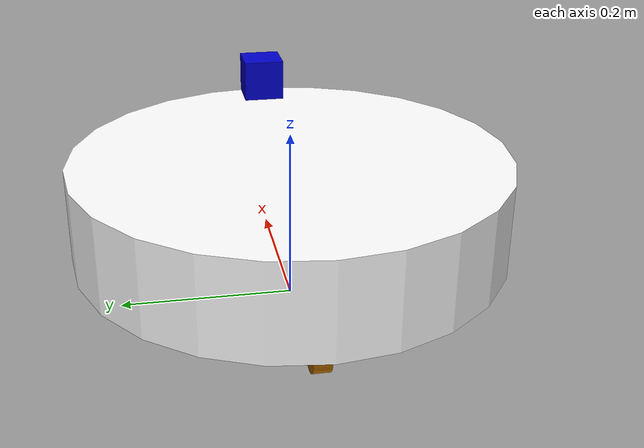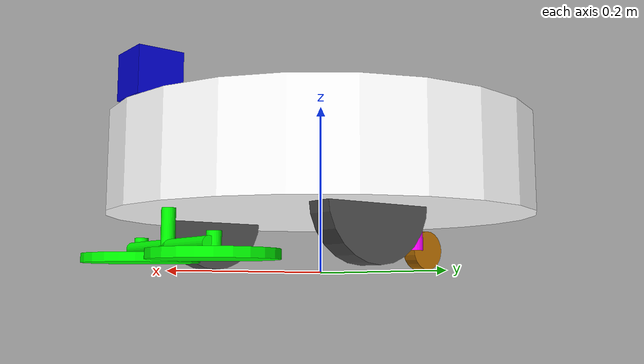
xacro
<?xml version="1.0"?>
<robot name="cleaning_robot" xmlns:xacro="http://www.ros.org/wiki/xacro">

    <!--Inclusions-->
    <!--Colors-->
    <material name="Gray">
        <color rgba="0.6 1 0.8 1"/>
    </material>

    <material name="DarkGray">
        <color rgba="0.3 0.3 0.3 1"/>
    </material>

    <material name="Orange">
        <color rgba="1 0.6 0 1"/>
    </material>

    <material name="Purple">
        <color rgba="1 0 1 1"/>
    </material>

    <material name="DarkOrange">
        <color rgba="0.7 0.42 0 1"/>
    </material>

    <material name="Green">
        <color rgba="0 1 0 1"/>
    </material>

    <material name="Red">
        <color rgba="1 0 0 1"/>
    </material>

    <material name="Blue">
        <color rgba="0.0 0.0 0.8 1.0"/>
    </material>

    <material name="White">
        <color rgba="1.0 1.0 1.0 1.0"/>
    </material>

    <!--Constants-->
    <xacro:property name="M_PI" value="3.141592653589793238462643"/>
    <xacro:property name="M_PI_2" value="1.57079632679" />
    <xacro:property name="DEG_TO_RAD" value="0.01745" />

    <xacro:property name="base_x_to_wheel" value="0.06"/>
    <xacro:property name="base_y_to_wheel" value="0.156"/>
    <xacro:property name="base_z_to_wheel" value="0.05"/>
    <xacro:property name="wheel_separation" value="0.312"/>

    <!--Component dimensions-->
    <xacro:property name="base_h" value="0.11"/>
    <xacro:property name="base_r" value="0.25"/>
    <xacro:property name="base_m" value="10.0" />

    <xacro:property name="caster_h" value="0.02"/>
    <xacro:property name="caster_r" value="0.025"/>
    <xacro:property name="caster_m" value="0.15"/>

    <xacro:property name="caster_rot_h" value="0.06"/>
    <xacro:property name="caster_rot_r" value="0.015"/>
    <xacro:property name="caster_rot_m" value="0.15"/>

    <xacro:property name="br_lft_h" value="0.10"/>
    <xacro:property name="br_lft_r" value="0.0075"/>
    <xacro:property name="br_lft_m" value="0.15"/>

    <xacro:property name="br_con1_h" value="0.09"/>
    <xacro:property name="br_con1_r" value="0.0075"/>
    <xacro:property name="br_con1_m" value="0.15"/>

    <xacro:property name="br_con2_h" value="0.025"/>
    <xacro:property name="br_con2_r" value="0.0075"/>
    <xacro:property name="br_con2_m" value="0.15"/>

    <xacro:property name="br_h" value="0.01"/>
    <xacro:property name="br_r" value="0.065"/>
    <xacro:property name="br_m" value="0.15"/>

    <xacro:property name="whl_h" value="0.03"/>
    <xacro:property name="whl_r" value="0.065"/>
    <xacro:property name="whl_m" value="0.6"/>

    <xacro:property name="hokuyo_size" value="0.05" />

    <xacro:macro name="cylinder_inertia" params="m r h">
        <inertia ixx="${10*m*(3*r*r+h*h)/12}" ixy = "0.0" ixz = "0.0" iyy="${10*m*(3*r*r+h*h)/12}" iyz = "0.0" izz="${10*m*r*r/2}"/>
    </xacro:macro>

    <xacro:macro name="wheel" params="fb lr parent translateX translateY flipY">
        <link name="${fb}_${lr}_wheel">
            <visual>
                <origin xyz="0 0 0" rpy="${flipY*M_PI_2} 0 0" />
                <geometry>
                    <cylinder length="${whl_h}" radius="${whl_r}" />
                </geometry>
                <material name="DarkGray" />
            </visual>
            <collision>
                <origin xyz="0 0 0" rpy="${flipY*M_PI_2} 0 0" />
                <geometry>
                    <cylinder length="${whl_h}" radius="${whl_r}" />
                </geometry>
            </collision>
            <inertial>
                <mass value="${whl_m}" />
                <origin xyz="0 0 0" />
                <xacro:cylinder_inertia  m="${whl_m}" r="${whl_r}" h="${whl_h}" />
            </inertial>
        </link>

        <gazebo reference="${fb}_${lr}_wheel">
            <mu1 value="1.0"/>
            <mu2 value="1.0"/>
            <kp  value="10000000.0" />
            <kd  value="1.0" />
            <fdir1 value="1 0 0"/>
            <material>Gazebo/Grey</material>
            <turnGravityOff>false</turnGravityOff>
        </gazebo>

        <joint name="${fb}_${lr}_wheel_joint" type="continuous">
            <parent link="${parent}"/>
            <child link="${fb}_${lr}_wheel"/>
            <origin xyz="${translateX * base_x_to_wheel} ${translateY * base_y_to_wheel} ${-base_z_to_wheel}" rpy="0 0 0" />
            <axis xyz="0 1 0" rpy="0 0 0" />
            <limit effort="100" velocity="100"/>
            <joint_properties damping="30.0" friction="1.0"/>
        </joint>

    <!-- Transmission is important to link the joints and the controller -->
        <transmission name="${fb}_${lr}_wheel_joint_trans">
            <type>transmission_interface/SimpleTransmission</type>
            <joint name="${fb}_${lr}_wheel_joint" />
            <actuator name="${fb}_${lr}_wheel_joint_motor">
                <hardwareInterface>EffortJointInterface</hardwareInterface>
                <mechanicalReduction>1</mechanicalReduction>
            </actuator>
        </transmission>

    </xacro:macro>

    <link name="base_footprint">
        <inertial>
            <mass value="0.0000001"/>
            <origin xyz="0 0 0" rpy="0 0 0"/>
            <inertia    ixx="0.0" ixy="0.0" ixz="0.0"
                        iyy="0.0" iyz="0.0"
                        izz="0.0"/>
        </inertial>
        <visual>
            <origin xyz="0 0 0" rpy="0 0 0"/>
            <geometry>
                <box size="0.001 0.001 0.001"/>
            </geometry>
        </visual>
    </link>

    <link name="base_link">
        <inertial>
            <mass value="${base_m}"/>
            <origin xyz="0 0 0" rpy="0 0 0"/>
            <xacro:cylinder_inertia m="${base_m}" r="${base_r}" h="${base_h}"/>
        </inertial>
        <visual>
            <origin xyz="0 0 0" rpy="0 0 0"/>
            <geometry>
                <cylinder length="${base_h}" radius="${base_r}"/>
            </geometry>
            <material name="White"/>
        </visual>
        <collision>
            <origin xyz="0 0 0" rpy="0 0 0"/>
            <geometry>
                <cylinder length="${base_h}" radius="${base_r}"/>
            </geometry>
        </collision>
    </link>

    <link name="caster_rotator">
        <inertial>
            <mass value="${caster_rot_m}"/>
            <origin xyz="0 0 0" rpy="0 0 0"/>
            <xacro:cylinder_inertia  m="${caster_rot_m}" r="${caster_rot_r}" h="${caster_rot_h}" />
        </inertial>
        <visual>
            <origin xyz="0 0 0" rpy="0 0 0"/>
            <geometry>
                <cylinder length="${caster_rot_h}" radius="${caster_rot_r}"/>
            </geometry>
            <material name="Purple"/>
        </visual>
        <collision>
            <origin xyz="0 0 0" rpy="0 0 0"/>
            <geometry>
                <cylinder length="${caster_rot_h}" radius="${caster_rot_r}"/>
            </geometry>
        </collision>
    </link>

    <link name="caster">
        <inertial>
            <mass value="${caster_m}"/>
            <origin xyz="0 0 0" rpy="0 0 0"/>
            <xacro:cylinder_inertia  m="${caster_m}" r="${caster_r}" h="${caster_h}" />
        </inertial>
        <visual>
            <origin xyz="0 0 0" rpy="0 0 0"/>
            <geometry>
                <cylinder length="${caster_h}" radius="${caster_r}"/>
            </geometry>
            <material name="DarkOrange"/>
        </visual>
        <collision>
            <origin xyz="0 0 0" rpy="0 0 0"/>
            <geometry>
                <cylinder length="${caster_h}" radius="${caster_r}"/>
            </geometry>
        </collision>
    </link>

    <link name="brush_lift">
        <inertial>
            <mass value="${br_lft_m}"/>
            <origin xyz="0 0 0" rpy="0 0 0"/>
            <xacro:cylinder_inertia  m="${br_lft_m}" r="${br_lft_h}" h="${br_lft_h}" />
        </inertial>
        <visual>
            <origin xyz="0 0 0" rpy="0 0 0"/>
            <geometry>
                <cylinder length="${br_lft_h}" radius="${br_lft_r}"/>
            </geometry>
            <material name="Green"/>
        </visual>
        <collision>
            <origin xyz="0 0 0" rpy="0 0 0"/>
            <geometry>
                <cylinder length="${br_lft_h}" radius="${br_lft_r}"/>
            </geometry>
        </collision>
    </link>

    <link name="left_brush_connector1">
        <inertial>
            <mass value="${br_con1_m}"/>
            <origin xyz="0 0 0" rpy="0 0 0"/>
            <xacro:cylinder_inertia  m="${br_con1_m}" r="${br_con1_r}" h="${br_con1_h}" />
        </inertial>
        <visual>
            <origin xyz="0 0 0" rpy="0 0 0"/>
            <geometry>
                <cylinder length="${br_con1_h}" radius="${br_con1_r}"/>
            </geometry>
            <material name="Green"/>
        </visual>
        <collision>
            <origin xyz="0 0 0" rpy="0 0 0"/>
            <geometry>
                <cylinder length="${br_con1_h}" radius="${br_con1_r}"/>
            </geometry>
        </collision>
    </link>

    <link name="left_brush_connector2">
        <inertial>
            <mass value="${br_con2_m}"/>
            <origin xyz="0 0 0" rpy="0 0 0"/>
            <xacro:cylinder_inertia  m="${br_con2_m}" r="${br_con2_r}" h="${br_con2_h}" />
        </inertial>
        <visual>
            <origin xyz="0 0 0" rpy="0 0 0"/>
            <geometry>
                <cylinder length="${br_con2_h}" radius="${br_con2_r}"/>
            </geometry>
            <material name="Green"/>
        </visual>
        <collision>
            <origin xyz="0 0 0" rpy="0 0 0"/>
            <geometry>
                <cylinder length="${br_con2_h}" radius="${br_con2_r}"/>
            </geometry>
        </collision>
    </link>

    <link name="right_brush_connector1">
        <inertial>
            <mass value="${br_con1_m}"/>
            <origin xyz="0 0 0" rpy="0 0 0"/>
            <xacro:cylinder_inertia  m="${br_con1_m}" r="${br_con1_r}" h="${br_con1_h}" />
        </inertial>
        <visual>
            <origin xyz="0 0 0" rpy="0 0 0"/>
            <geometry>
                <cylinder length="${br_con1_h}" radius="${br_con1_r}"/>
            </geometry>
            <material name="Green"/>
        </visual>
        <collision>
            <origin xyz="0 0 0" rpy="0 0 0"/>
            <geometry>
                <cylinder length="${br_con1_h}" radius="${br_con1_r}"/>
            </geometry>
        </collision>
    </link>

    <link name="right_brush_connector2">
        <inertial>
            <mass value="${br_con2_m}"/>
            <origin xyz="0 0 0" rpy="0 0 0"/>
            <xacro:cylinder_inertia  m="${br_con2_m}" r="${br_con2_r}" h="${br_con2_h}" />
        </inertial>
        <visual>
            <origin xyz="0 0 0" rpy="0 0 0"/>
            <geometry>
                <cylinder length="${br_con2_h}" radius="${br_con2_r}"/>
            </geometry>
            <material name="Green"/>
        </visual>
        <collision>
            <origin xyz="0 0 0" rpy="0 0 0"/>
            <geometry>
                <cylinder length="${br_con2_h}" radius="${br_con2_r}"/>
            </geometry>
        </collision>
    </link>

    <link name="left_brush">
        <inertial>
            <mass value="${br_m}"/>
            <origin xyz="0 0 0" rpy="0 0 0"/>
            <xacro:cylinder_inertia  m="${br_m}" r="${br_r}" h="${br_h}" />
        </inertial>
        <visual>
            <origin xyz="0 0 0" rpy="0 0 0"/>
            <geometry>
                <cylinder length="${br_h}" radius="${br_r}"/>
            </geometry>
            <material name="Green"/>
        </visual>
        <collision>
            <origin xyz="0 0 0" rpy="0 0 0"/>
            <geometry>
                <cylinder length="${br_h}" radius="${br_r}"/>
            </geometry>
        </collision>
    </link>

    <link name="right_brush">
        <inertial>
            <mass value="${br_m}"/>
            <origin xyz="0 0 0" rpy="0 0 0"/>
            <xacro:cylinder_inertia  m="${br_m}" r="${br_r}" h="${br_h}" />
        </inertial>
        <visual>
            <origin xyz="0 0 0" rpy="0 0 0"/>
            <geometry>
                <cylinder length="${br_h}" radius="${br_r}"/>
            </geometry>
            <material name="Green"/>
        </visual>
        <collision>
            <origin xyz="0 0 0" rpy="0 0 0"/>
            <geometry>
                <cylinder length="${br_h}" radius="${br_r}"/>
            </geometry>
        </collision>
    </link>

    <link name="hokuyo_link">
        <visual>
            <origin xyz="0 0 0" rpy="0 0 0" />
            <geometry>
                <box size="${hokuyo_size} ${hokuyo_size} ${hokuyo_size}"/>
            </geometry>
            <material name="Blue" />
        </visual>
    </link>

     <joint name="base_footprint_joint" type="fixed">
        <origin xyz="0 0 0.12" rpy="0 0 0"/>
        <parent link="base_footprint"/>
        <child link="base_link" />
    </joint>

    <joint name="caster_rotator_joint" type="fixed">
        <origin rpy="0 0 0" xyz="-0.15 0 ${-0.06}"/>
        <parent link="base_link"/>
        <child link="caster_rotator"/>
    </joint>

    <joint name="caster_joint" type="continuous">
        <origin rpy="${M_PI_2} 0 0" xyz="-0.02 0 -0.03"/>
        <parent link="caster_rotator"/>
        <child link="caster"/>
        <axis xyz="0 0 1"/>
      <limit effort="100" velocity="100"/>
      <joint_properties damping="0.0" friction="0.0"/>
    </joint>

    <joint name="brush_lift_joint" type="prismatic">
        <origin rpy="0 0 ${M_PI_2}" xyz="0.2 0 ${-base_h/2}"/>
        <parent link="base_link"/>
        <child link="brush_lift"/>
        <axis xyz="0 0 1"/>
        <limit effort="30" velocity="1.0" lower="0" upper="0.035"/>
        <joint_properties damping="0.0" friction="0.0"/>
    </joint>

    <joint name="left_brush_connector1_joint" type="fixed">
        <origin rpy="0 ${M_PI_2} 0" xyz="0.04 0 -0.04"/>
        <parent link="brush_lift"/>
        <child link="left_brush_connector1"/>
    </joint>

    <joint name="right_brush_connector1_joint" type="fixed">
        <origin rpy="0 ${M_PI_2} 0" xyz="-0.04 0 -0.04"/>
        <parent link="brush_lift"/>
        <child link="right_brush_connector1"/>
    </joint>

    <joint name="left_brush_connector2_joint" type="fixed">
        <origin rpy="0 ${-M_PI_2} 0" xyz="0 0.008 0.04"/>
        <parent link="left_brush_connector1"/>
        <child link="left_brush_connector2"/>
    </joint>

    <joint name="right_brush_connector2_joint" type="fixed">
        <origin rpy="0 ${-M_PI_2} 0" xyz="0 0.008 -0.04"/>
        <parent link="right_brush_connector1"/>
        <child link="right_brush_connector2"/>
    </joint>

    <joint name="left_brush_joint" type="continuous">
        <origin rpy="0 0 0" xyz="0 0 -0.01"/>
        <parent link="left_brush_connector2"/>
        <child link="left_brush"/>
        <axis xyz="0 0 1"/>
      <limit effort="100" velocity="100"/>
      <joint_properties damping="0.0" friction="0.0"/>
    </joint>

    <joint name="right_brush_joint" type="continuous">
        <origin rpy="0 0 0" xyz="0 0 -0.01"/>
        <parent link="right_brush_connector2"/>
        <child link="right_brush"/>
        <axis xyz="0 0 1"/>
      <limit effort="100" velocity="100"/>
      <joint_properties damping="0.0" friction="0.0"/>
    </joint>

    <joint name="hokuyo_joint" type="fixed">
        <origin xyz="${base_r - hokuyo_size/2} 0 ${base_h/2+hokuyo_size/2}" rpy="0 0 0" />
        <parent link="base_link"/>
        <child link="hokuyo_link" />
    </joint>

    <xacro:wheel fb="front" lr="right" parent="base_link" translateX="1" translateY="-1" flipY="1"/>
    <xacro:wheel fb="front" lr="left" parent="base_link" translateX="1" translateY="1" flipY="1"/>

    <gazebo reference="base_footprint">
        <turnGravityOff>false</turnGravityOff>
    </gazebo>

    <gazebo reference="base_link">
        <material>Gazebo/White</material>
        <turnGravityOff>false</turnGravityOff>
    </gazebo>

    <gazebo reference="caster_rotator">
        <turnGravityOff>false</turnGravityOff>
    </gazebo>

    <gazebo reference="caster">
        <turnGravityOff>false</turnGravityOff>
    </gazebo>

    <gazebo reference="brush_lift">
        <turnGravityOff>false</turnGravityOff>
    </gazebo>

    <gazebo reference="left_brush_connector1">
        <turnGravityOff>false</turnGravityOff>
    </gazebo>

    <gazebo reference="left_brush_connector2">
        <turnGravityOff>false</turnGravityOff>
    </gazebo>

    <gazebo reference="right_brush_connector1">
        <turnGravityOff>false</turnGravityOff>
    </gazebo>

    <gazebo reference="right_brush_connector2">
        <turnGravityOff>false</turnGravityOff>
    </gazebo>

    <gazebo reference="left_brush">
        <turnGravityOff>false</turnGravityOff>
    </gazebo>

    <gazebo reference="right_brush">
        <turnGravityOff>false</turnGravityOff>
    </gazebo>

    <gazebo reference="hokuyo_link">
        <material>Gazebo/Blue</material>
        <turnGravityOff>false</turnGravityOff>
        <sensor type="ray" name="head_hokuyo_sensor">
            <pose>${hokuyo_size/2} 0 0 0 0 0</pose>
            <visualize>false</visualize>
            <update_rate>40</update_rate>
            <ray>
                <scan>
                    <horizontal>
                        <samples>720</samples>
                        <resolution>1</resolution>
                        <min_angle>${-M_PI_2}</min_angle>
                        <max_angle>${M_PI_2}</max_angle>
                    </horizontal>
                </scan>
                <range>
                    <min>0.10</min>
                    <max>10.0</max>
                    <resolution>0.001</resolution>
                </range>
            </ray>
            <plugin name="gazebo_ros_head_hokuyo_controller" filename="libgazebo_ros_laser.so">
                <topicName>/scan</topicName>
                <frameName>hokuyo_link</frameName>
            </plugin>
        </sensor>
    </gazebo>

     <gazebo>
        <plugin name="differential_drive_controller" filename="libgazebo_ros_diff_drive.so">
            <legacyMode>true</legacyMode>
            <rosDebugLevel>Debug</rosDebugLevel>
            <publishWheelTF>false</publishWheelTF>
            <robotNamespace>/</robotNamespace>
            <publishTf>1</publishTf>
            <publishWheelJointState>false</publishWheelJointState>
            <alwaysOn>true</alwaysOn>
            <updateRate>100.0</updateRate>
            <leftJoint>front_left_wheel_joint</leftJoint>
            <rightJoint>front_right_wheel_joint</rightJoint>
            <wheelSeparation>${wheel_separation}</wheelSeparation>
            <wheelDiameter>${2*whl_r}</wheelDiameter>
            <broadcastTF>1</broadcastTF>
            <wheelTorque>30</wheelTorque>
            <wheelAcceleration>1.5</wheelAcceleration>
            <commandTopic>cmd_vel</commandTopic>
            <odometryFrame>odom</odometryFrame>
            <odometryTopic>odom</odometryTopic>
            <robotBaseFrame>base_footprint</robotBaseFrame>
        </plugin>
    </gazebo>

</robot>
